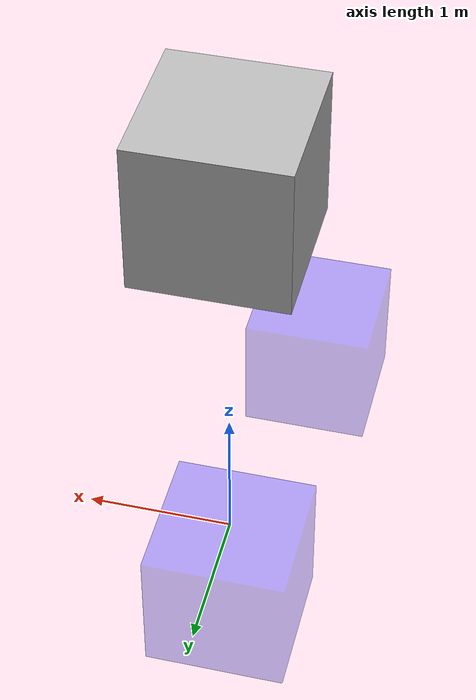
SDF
<?xml version="1.0"?>
<sdf version="1.4">
  <world name="default">

    <include>
      <uri>model://sun</uri>
    </include>

    <model name="seawolf8">
      <pose>0 0 3 0 0 0</pose>

      <link name="base_link">
        <gravity>0</gravity>
        <collision name="collision">
          <geometry>
            <box>
              <size>1 1 1</size>
            </box>
          </geometry>
          <surface>
            <contact>
              <collide_bitmask>0x11</collide_bitmask>
            </contact>
          </surface>
        </collision>

        <visual name="visual">
          <geometry>
            <box>
              <size>1 1 1</size>
            </box>
          </geometry>
        </visual>
      </link>

      <plugin name="seawolf_model_control" filename="libseawolf_model_control.so" />
    </model>

    <model name="position_goal_1_timer_0">
      <pose>0 0 -0.5 0 0 0</pose>
      <static>true</static>

      <link name="base_link">

        <collision name="collision">
          <geometry>
            <box>
              <size>1 1 1</size>
            </box>
          </geometry>
          <surface>
            <contact>
              <collide_bitmask>0x00</collide_bitmask>
            </contact>
          </surface>
        </collision>

        <visual name="visual">
          <geometry>
            <box>
              <size>1 1 1</size>
            </box>
          </geometry>

          <material>
            <diffuse> 0 0 1 0.3</diffuse>
          </material>
        </visual>
      </link>
    </model>

    <model name="position_goal_2_timer_3">
      <pose>0 -3 -1 0 0 0</pose>
      <static>true</static>

      <link name="base_link">

        <collision name="collision">
          <geometry>
            <box>
              <size>1 1 1</size>
            </box>
          </geometry>
          <surface>
            <contact>
              <collide_bitmask>0x00</collide_bitmask>
            </contact>
          </surface>
        </collision>

        <visual name="visual">
          <geometry>
            <box>
              <size>1 1 1</size>
            </box>
          </geometry>

          <material>
            <diffuse> 0 0 1 0.3</diffuse>
          </material>
        </visual>
      </link>
    </model>

    <plugin name="oracle" filename="liboracle.so" />
  </world>
</sdf>
